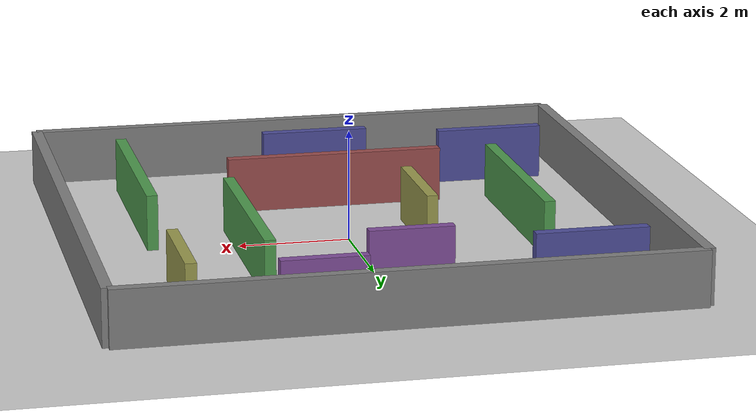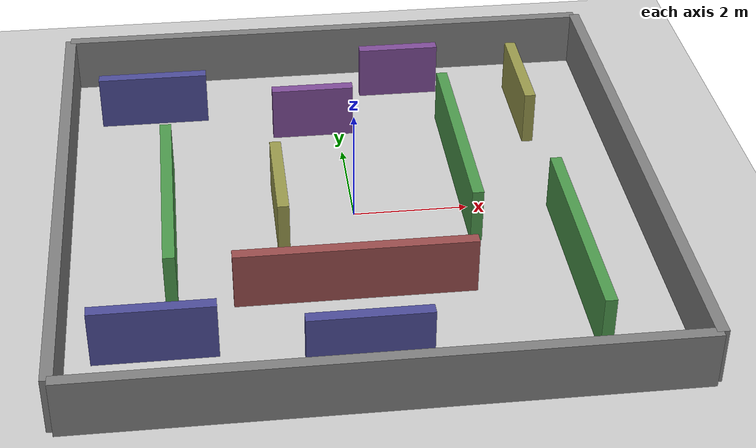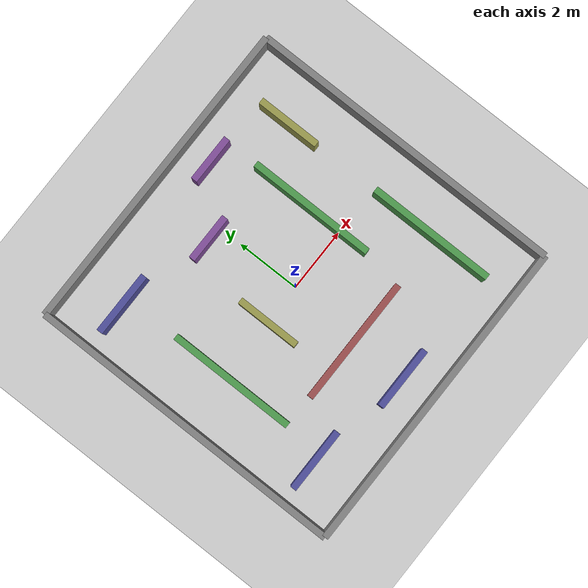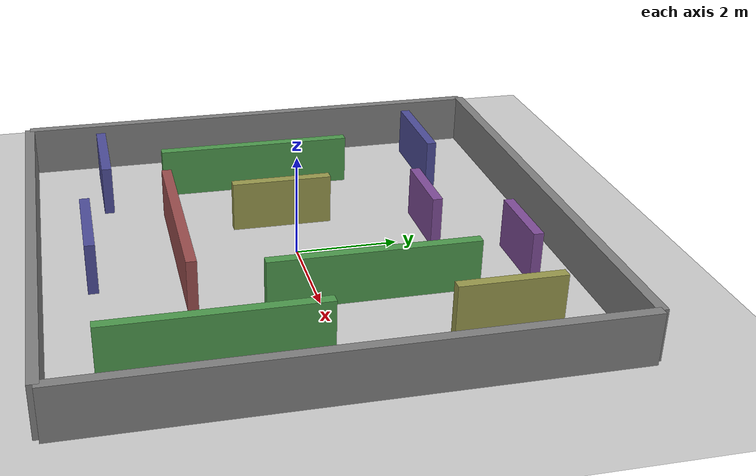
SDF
<sdf version="1.7">
 <world name="tunnel_maze">
  <physics type="ode">
   <real_time_update_rate>1000</real_time_update_rate>
   <max_step_size>0.001</max_step_size>
   <real_time_factor>1</real_time_factor>
  </physics>
  <light name="sun" type="directional">
   <pose>0 0 10 0 -0 0</pose>
   <diffuse>0.8 0.8 0.8 1</diffuse>
   <specular>0.2 0.2 0.2 1</specular>
   <attenuation>
    <range>1000</range>
    <constant>0.9</constant>
    <linear>0.01</linear>
    <quadratic>0.001</quadratic>
   </attenuation>
   <direction>-0.5 0.1 -0.9</direction>
   <spot><inner_angle>0</inner_angle><outer_angle>0</outer_angle><falloff>0</falloff></spot>
  </light>
  <model name="ground_plane">
   <static>1</static>
   <link name="link">
    <collision name="collision">
     <geometry><plane><normal>0 0 1</normal><size>100 100</size></plane></geometry>
     <surface>
      <contact><collide_bitmask>65535</collide_bitmask></contact>
      <friction><ode><mu>100</mu><mu2>50</mu2></ode></friction>
     </surface>
    </collision>
    <visual name="visual">
     <cast_shadows>0</cast_shadows>
     <geometry><plane><normal>0 0 1</normal><size>100 100</size></plane></geometry>
     <material>
      <script><uri>file://media/materials/scripts/gazebo.material</uri><name>Gazebo/Grey</name></script>
     </material>
    </visual>
   </link>
  </model>
  <model name="north_wall">
   <static>1</static>
   <pose>0 5 0.5 0 -0 0</pose>
   <link name="link">
    <collision name="collision"><geometry><box><size>10 0.2 1</size></box></geometry></collision>
    <visual name="visual">
     <geometry><box><size>10 0.2 1</size></box></geometry>
     <material><ambient>0.5 0.5 0.5 1</ambient></material>
    </visual>
   </link>
  </model>
  <model name="south_wall">
   <static>1</static>
   <pose>0 -5 0.5 0 -0 0</pose>
   <link name="link">
    <collision name="collision"><geometry><box><size>10 0.2 1</size></box></geometry></collision>
    <visual name="visual">
     <geometry><box><size>10 0.2 1</size></box></geometry>
     <material><ambient>0.5 0.5 0.5 1</ambient></material>
    </visual>
   </link>
  </model>
  <model name="east_wall">
   <static>1</static>
   <pose>5 0 0.5 0 -0 1.57</pose>
   <link name="link">
    <collision name="collision"><geometry><box><size>10 0.2 1</size></box></geometry></collision>
    <visual name="visual">
     <geometry><box><size>10 0.2 1</size></box></geometry>
     <material><ambient>0.5 0.5 0.5 1</ambient></material>
    </visual>
   </link>
  </model>
  <model name="west_wall">
   <static>1</static>
   <pose>-5 0 0.5 0 -0 1.57</pose>
   <link name="link">
    <collision name="collision"><geometry><box><size>10 0.2 1</size></box></geometry></collision>
    <visual name="visual">
     <geometry><box><size>10 0.2 1</size></box></geometry>
     <material><ambient>0.5 0.5 0.5 1</ambient></material>
    </visual>
   </link>
  </model>
  <model name="h_wall_1">
   <static>1</static>
   <pose>-0.210999 -2.27009 0.5 0 -0 0</pose>
   <link name="link">
    <collision name="collision"><geometry><box><size>4 0.2 1</size></box></geometry></collision>
    <visual name="visual">
     <geometry><box><size>4 0.2 1</size></box></geometry>
     <material><ambient>0.6 0.3 0.3 1</ambient></material>
    </visual>
   </link>
  </model>
  <model name="v_wall_1">
   <static>1</static>
   <pose>-3.20898 -0.265594 0.5 0 -0 1.57</pose>
   <link name="link">
    <collision name="collision"><geometry><box><size>4 0.2 1</size></box></geometry></collision>
    <visual name="visual">
     <geometry><box><size>4 0.2 1</size></box></geometry>
     <material><ambient>0.3 0.6 0.3 1</ambient></material>
    </visual>
   </link>
  </model>
  <model name="v_wall_3">
   <static>1</static>
   <pose>2 1 0.5 0 -0 1.57</pose>
   <link name="link">
    <collision name="collision"><geometry><box><size>4 0.2 1</size></box></geometry></collision>
    <visual name="visual">
     <geometry><box><size>4 0.2 1</size></box></geometry>
     <material><ambient>0.3 0.6 0.3 1</ambient></material>
    </visual>
   </link>
  </model>
  <model name="t_wall">
   <static>1</static>
   <pose>-3.42563 3.49425 0.5 0 -0 0</pose>
   <link name="link">
    <collision name="collision"><geometry><box><size>2 0.2 1</size></box></geometry></collision>
    <visual name="visual">
     <geometry><box><size>2 0.2 1</size></box></geometry>
     <material><ambient>0.3 0.3 0.6 1</ambient></material>
    </visual>
   </link>
  </model>
  <model name="dead_end_1">
   <static>1</static>
   <pose>3.5 3 0.5 0 -0 1.57</pose>
   <link name="link">
    <collision name="collision"><geometry><box><size>2 0.2 1</size></box></geometry></collision>
    <visual name="visual">
     <geometry><box><size>2 0.2 1</size></box></geometry>
     <material><ambient>0.6 0.6 0.3 1</ambient></material>
    </visual>
   </link>
  </model>
  <model name="chamber_wall_1">
   <static>1</static>
   <pose>-0.474224 2.73855 0.5 0 -0 0</pose>
   <link name="link">
    <collision name="collision"><geometry><box><size>1.5 0.2 1</size></box></geometry></collision>
    <visual name="visual">
     <geometry><box><size>1.5 0.2 1</size></box></geometry>
     <material><ambient>0.5 0.3 0.6 1</ambient></material>
    </visual>
   </link>
  </model>
  <gravity>0 0 -9.8</gravity>
  <magnetic_field>6e-06 2.3e-05 -4.2e-05</magnetic_field>
  <atmosphere type="adiabatic"/>
  <scene><ambient>0.4 0.4 0.4 1</ambient><background>0.7 0.7 0.7 1</background><shadows>1</shadows></scene>
  <spherical_coordinates>
   <surface_model>EARTH_WGS84</surface_model>
   <latitude_deg>0</latitude_deg>
   <longitude_deg>0</longitude_deg>
   <elevation>0</elevation>
   <heading_deg>0</heading_deg>
  </spherical_coordinates>
  <model name="v_wall_1_clone">
   <static>1</static>
   <pose>3.51816 -2.09524 0.5 0 -0 1.57</pose>
   <link name="link">
    <collision name="collision"><geometry><box><size>4 0.2 1</size></box></geometry></collision>
    <visual name="visual">
     <geometry><box><size>4 0.2 1</size></box></geometry>
     <material><ambient>0.3 0.6 0.3 1</ambient></material>
    </visual>
   </link>
  </model>
  <model name="t_wall_clone">
   <static>1</static>
   <pose>-0.184966 -3.98013 0.5 0 -0 0</pose>
   <link name="link">
    <collision name="collision"><geometry><box><size>2 0.2 1</size></box></geometry></collision>
    <visual name="visual">
     <geometry><box><size>2 0.2 1</size></box></geometry>
     <material><ambient>0.3 0.3 0.6 1</ambient></material>
    </visual>
   </link>
  </model>
  <model name="dead_end_1_clone">
   <static>1</static>
   <pose>-1.29382 -0.050748 0.5 0 -0 1.57</pose>
   <link name="link">
    <collision name="collision"><geometry><box><size>2 0.2 1</size></box></geometry></collision>
    <visual name="visual">
     <geometry><box><size>2 0.2 1</size></box></geometry>
     <material><ambient>0.6 0.6 0.3 1</ambient></material>
    </visual>
   </link>
  </model>
  <model name="t_wall_clone_clone">
   <static>1</static>
   <pose>-3.49248 -3.4703 0.5 0 -0 0</pose>
   <link name="link">
    <collision name="collision"><geometry><box><size>2 0.2 1</size></box></geometry></collision>
    <visual name="visual">
     <geometry><box><size>2 0.2 1</size></box></geometry>
     <material><ambient>0.3 0.3 0.6 1</ambient></material>
    </visual>
   </link>
  </model>
  <model name="chamber_wall_1_clone">
   <static>1</static>
   <pose>1.30882 4.08274 0.5 0 -0 0</pose>
   <link name="link">
    <collision name="collision"><geometry><box><size>1.5 0.2 1</size></box></geometry></collision>
    <visual name="visual">
     <geometry><box><size>1.5 0.2 1</size></box></geometry>
     <material><ambient>0.5 0.3 0.6 1</ambient></material>
    </visual>
   </link>
  </model>
 </world>
</sdf>
